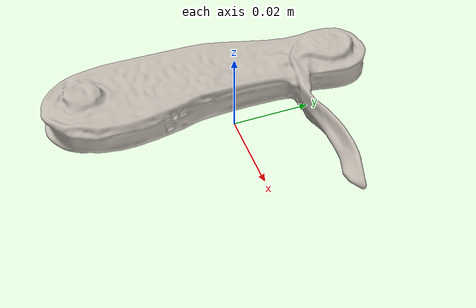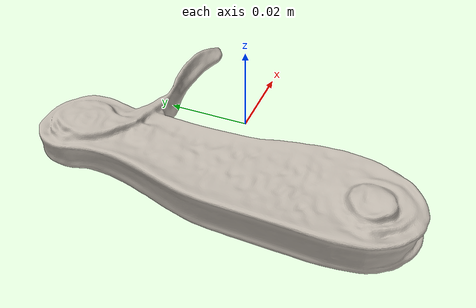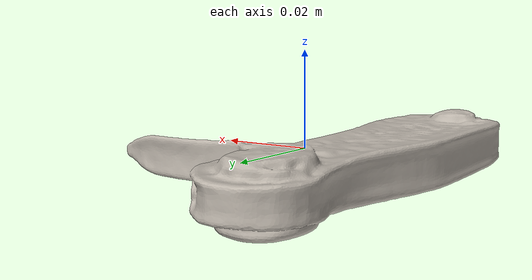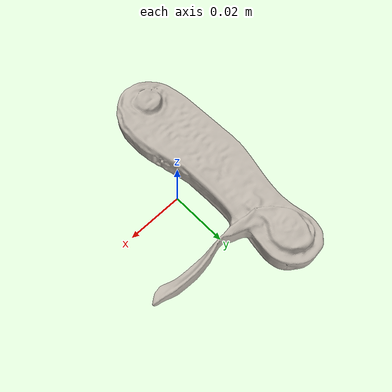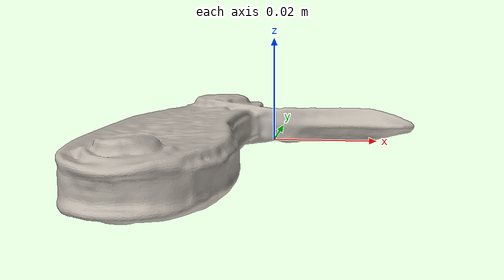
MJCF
<?xml version='1.0' encoding='utf-8'?>
<mujoco model="can_opener_5">
  <asset>
    <texture file="ceramic.png" name="tex-can_opener_5" type="2d" />
    <material name="can_opener_5" reflectance="0.5" texrepeat="1 1" texture="tex-can_opener_5" texuniform="false" />
    <mesh file="visual/model_normalized_0.obj" name="model_normalized_0_vis" scale="0.09 0.09 0.09" refquat="0.7071067811865475 0.0 0.7071067811865475 0.0" />
    <mesh file="collision/model_normalized_collision_13.obj" name="model_normalized_collision_13._coll" scale="0.09 0.09 0.09" refquat="0.7071067811865475 0.0 0.7071067811865475 0.0" />
    <mesh file="collision/model_normalized_collision_15.obj" name="model_normalized_collision_15._coll" scale="0.09 0.09 0.09" refquat="0.7071067811865475 0.0 0.7071067811865475 0.0" />
    <mesh file="collision/model_normalized_collision_10.obj" name="model_normalized_collision_10._coll" scale="0.09 0.09 0.09" refquat="0.7071067811865475 0.0 0.7071067811865475 0.0" />
    <mesh file="collision/model_normalized_collision_26.obj" name="model_normalized_collision_26._coll" scale="0.09 0.09 0.09" refquat="0.7071067811865475 0.0 0.7071067811865475 0.0" />
    <mesh file="collision/model_normalized_collision_25.obj" name="model_normalized_collision_25._coll" scale="0.09 0.09 0.09" refquat="0.7071067811865475 0.0 0.7071067811865475 0.0" />
    <mesh file="collision/model_normalized_collision_5.obj" name="model_normalized_collision_5._coll" scale="0.09 0.09 0.09" refquat="0.7071067811865475 0.0 0.7071067811865475 0.0" />
    <mesh file="collision/model_normalized_collision_31.obj" name="model_normalized_collision_31._coll" scale="0.09 0.09 0.09" refquat="0.7071067811865475 0.0 0.7071067811865475 0.0" />
    <mesh file="collision/model_normalized_collision_3.obj" name="model_normalized_collision_3._coll" scale="0.09 0.09 0.09" refquat="0.7071067811865475 0.0 0.7071067811865475 0.0" />
    <mesh file="collision/model_normalized_collision_14.obj" name="model_normalized_collision_14._coll" scale="0.09 0.09 0.09" refquat="0.7071067811865475 0.0 0.7071067811865475 0.0" />
    <mesh file="collision/model_normalized_collision_28.obj" name="model_normalized_collision_28._coll" scale="0.09 0.09 0.09" refquat="0.7071067811865475 0.0 0.7071067811865475 0.0" />
    <mesh file="collision/model_normalized_collision_11.obj" name="model_normalized_collision_11._coll" scale="0.09 0.09 0.09" refquat="0.7071067811865475 0.0 0.7071067811865475 0.0" />
    <mesh file="collision/model_normalized_collision_29.obj" name="model_normalized_collision_29._coll" scale="0.09 0.09 0.09" refquat="0.7071067811865475 0.0 0.7071067811865475 0.0" />
    <mesh file="collision/model_normalized_collision_24.obj" name="model_normalized_collision_24._coll" scale="0.09 0.09 0.09" refquat="0.7071067811865475 0.0 0.7071067811865475 0.0" />
    <mesh file="collision/model_normalized_collision_1.obj" name="model_normalized_collision_1._coll" scale="0.09 0.09 0.09" refquat="0.7071067811865475 0.0 0.7071067811865475 0.0" />
    <mesh file="collision/model_normalized_collision_0.obj" name="model_normalized_collision_0._coll" scale="0.09 0.09 0.09" refquat="0.7071067811865475 0.0 0.7071067811865475 0.0" />
    <mesh file="collision/model_normalized_collision_27.obj" name="model_normalized_collision_27._coll" scale="0.09 0.09 0.09" refquat="0.7071067811865475 0.0 0.7071067811865475 0.0" />
    <mesh file="collision/model_normalized_collision_9.obj" name="model_normalized_collision_9._coll" scale="0.09 0.09 0.09" refquat="0.7071067811865475 0.0 0.7071067811865475 0.0" />
    <mesh file="collision/model_normalized_collision_19.obj" name="model_normalized_collision_19._coll" scale="0.09 0.09 0.09" refquat="0.7071067811865475 0.0 0.7071067811865475 0.0" />
    <mesh file="collision/model_normalized_collision_21.obj" name="model_normalized_collision_21._coll" scale="0.09 0.09 0.09" refquat="0.7071067811865475 0.0 0.7071067811865475 0.0" />
    <mesh file="collision/model_normalized_collision_30.obj" name="model_normalized_collision_30._coll" scale="0.09 0.09 0.09" refquat="0.7071067811865475 0.0 0.7071067811865475 0.0" />
    <mesh file="collision/model_normalized_collision_20.obj" name="model_normalized_collision_20._coll" scale="0.09 0.09 0.09" refquat="0.7071067811865475 0.0 0.7071067811865475 0.0" />
    <mesh file="collision/model_normalized_collision_2.obj" name="model_normalized_collision_2._coll" scale="0.09 0.09 0.09" refquat="0.7071067811865475 0.0 0.7071067811865475 0.0" />
    <mesh file="collision/model_normalized_collision_7.obj" name="model_normalized_collision_7._coll" scale="0.09 0.09 0.09" refquat="0.7071067811865475 0.0 0.7071067811865475 0.0" />
    <mesh file="collision/model_normalized_collision_22.obj" name="model_normalized_collision_22._coll" scale="0.09 0.09 0.09" refquat="0.7071067811865475 0.0 0.7071067811865475 0.0" />
    <mesh file="collision/model_normalized_collision_16.obj" name="model_normalized_collision_16._coll" scale="0.09 0.09 0.09" refquat="0.7071067811865475 0.0 0.7071067811865475 0.0" />
    <mesh file="collision/model_normalized_collision_8.obj" name="model_normalized_collision_8._coll" scale="0.09 0.09 0.09" refquat="0.7071067811865475 0.0 0.7071067811865475 0.0" />
    <mesh file="collision/model_normalized_collision_6.obj" name="model_normalized_collision_6._coll" scale="0.09 0.09 0.09" refquat="0.7071067811865475 0.0 0.7071067811865475 0.0" />
    <mesh file="collision/model_normalized_collision_18.obj" name="model_normalized_collision_18._coll" scale="0.09 0.09 0.09" refquat="0.7071067811865475 0.0 0.7071067811865475 0.0" />
    <mesh file="collision/model_normalized_collision_17.obj" name="model_normalized_collision_17._coll" scale="0.09 0.09 0.09" refquat="0.7071067811865475 0.0 0.7071067811865475 0.0" />
    <mesh file="collision/model_normalized_collision_12.obj" name="model_normalized_collision_12._coll" scale="0.09 0.09 0.09" refquat="0.7071067811865475 0.0 0.7071067811865475 0.0" />
    <mesh file="collision/model_normalized_collision_4.obj" name="model_normalized_collision_4._coll" scale="0.09 0.09 0.09" refquat="0.7071067811865475 0.0 0.7071067811865475 0.0" />
    <mesh file="collision/model_normalized_collision_23.obj" name="model_normalized_collision_23._coll" scale="0.09 0.09 0.09" refquat="0.7071067811865475 0.0 0.7071067811865475 0.0" />
    <texture type="2d" name="44529d138ebb_can_opener__3d_asse_texture_kd" file="visual/44529d138ebb_can_opener__3d_asse_texture_kd.png" />
    <material name="Material_0" texture="44529d138ebb_can_opener__3d_asse_texture_kd" specular="0.5" shininess="0.5" />
  </asset>
  <default>
    <default class="region">
      <geom group="1" conaffinity="0" contype="0" rgba="0 1 0 0" />
    </default>
  </default>
  <worldbody>
    <body>
      <body name="object">
        <geom solimp="0.998 0.998 0.001" solref="0.001 1" density="100" friction="0.95 0.3 0.1" type="mesh" mesh="model_normalized_0_vis" conaffinity="0" contype="0" group="1" material="Material_0" />
        <geom solimp="0.998 0.998 0.001" solref="0.001 1" density="100" friction="0.95 0.3 0.1" type="mesh" mesh="model_normalized_collision_13._coll" group="0" rgba="0.8 0.8 0.8 0.0" />
        <geom solimp="0.998 0.998 0.001" solref="0.001 1" density="100" friction="0.95 0.3 0.1" type="mesh" mesh="model_normalized_collision_15._coll" group="0" rgba="0.8 0.8 0.8 0.0" />
        <geom solimp="0.998 0.998 0.001" solref="0.001 1" density="100" friction="0.95 0.3 0.1" type="mesh" mesh="model_normalized_collision_10._coll" group="0" rgba="0.8 0.8 0.8 0.0" />
        <geom solimp="0.998 0.998 0.001" solref="0.001 1" density="100" friction="0.95 0.3 0.1" type="mesh" mesh="model_normalized_collision_26._coll" group="0" rgba="0.8 0.8 0.8 0.0" />
        <geom solimp="0.998 0.998 0.001" solref="0.001 1" density="100" friction="0.95 0.3 0.1" type="mesh" mesh="model_normalized_collision_25._coll" group="0" rgba="0.8 0.8 0.8 0.0" />
        <geom solimp="0.998 0.998 0.001" solref="0.001 1" density="100" friction="0.95 0.3 0.1" type="mesh" mesh="model_normalized_collision_5._coll" group="0" rgba="0.8 0.8 0.8 0.0" />
        <geom solimp="0.998 0.998 0.001" solref="0.001 1" density="100" friction="0.95 0.3 0.1" type="mesh" mesh="model_normalized_collision_31._coll" group="0" rgba="0.8 0.8 0.8 0.0" />
        <geom solimp="0.998 0.998 0.001" solref="0.001 1" density="100" friction="0.95 0.3 0.1" type="mesh" mesh="model_normalized_collision_3._coll" group="0" rgba="0.8 0.8 0.8 0.0" />
        <geom solimp="0.998 0.998 0.001" solref="0.001 1" density="100" friction="0.95 0.3 0.1" type="mesh" mesh="model_normalized_collision_14._coll" group="0" rgba="0.8 0.8 0.8 0.0" />
        <geom solimp="0.998 0.998 0.001" solref="0.001 1" density="100" friction="0.95 0.3 0.1" type="mesh" mesh="model_normalized_collision_28._coll" group="0" rgba="0.8 0.8 0.8 0.0" />
        <geom solimp="0.998 0.998 0.001" solref="0.001 1" density="100" friction="0.95 0.3 0.1" type="mesh" mesh="model_normalized_collision_11._coll" group="0" rgba="0.8 0.8 0.8 0.0" />
        <geom solimp="0.998 0.998 0.001" solref="0.001 1" density="100" friction="0.95 0.3 0.1" type="mesh" mesh="model_normalized_collision_29._coll" group="0" rgba="0.8 0.8 0.8 0.0" />
        <geom solimp="0.998 0.998 0.001" solref="0.001 1" density="100" friction="0.95 0.3 0.1" type="mesh" mesh="model_normalized_collision_24._coll" group="0" rgba="0.8 0.8 0.8 0.0" />
        <geom solimp="0.998 0.998 0.001" solref="0.001 1" density="100" friction="0.95 0.3 0.1" type="mesh" mesh="model_normalized_collision_1._coll" group="0" rgba="0.8 0.8 0.8 0.0" />
        <geom solimp="0.998 0.998 0.001" solref="0.001 1" density="100" friction="0.95 0.3 0.1" type="mesh" mesh="model_normalized_collision_0._coll" group="0" rgba="0.8 0.8 0.8 0.0" />
        <geom solimp="0.998 0.998 0.001" solref="0.001 1" density="100" friction="0.95 0.3 0.1" type="mesh" mesh="model_normalized_collision_27._coll" group="0" rgba="0.8 0.8 0.8 0.0" />
        <geom solimp="0.998 0.998 0.001" solref="0.001 1" density="100" friction="0.95 0.3 0.1" type="mesh" mesh="model_normalized_collision_9._coll" group="0" rgba="0.8 0.8 0.8 0.0" />
        <geom solimp="0.998 0.998 0.001" solref="0.001 1" density="100" friction="0.95 0.3 0.1" type="mesh" mesh="model_normalized_collision_19._coll" group="0" rgba="0.8 0.8 0.8 0.0" />
        <geom solimp="0.998 0.998 0.001" solref="0.001 1" density="100" friction="0.95 0.3 0.1" type="mesh" mesh="model_normalized_collision_21._coll" group="0" rgba="0.8 0.8 0.8 0.0" />
        <geom solimp="0.998 0.998 0.001" solref="0.001 1" density="100" friction="0.95 0.3 0.1" type="mesh" mesh="model_normalized_collision_30._coll" group="0" rgba="0.8 0.8 0.8 0.0" />
        <geom solimp="0.998 0.998 0.001" solref="0.001 1" density="100" friction="0.95 0.3 0.1" type="mesh" mesh="model_normalized_collision_20._coll" group="0" rgba="0.8 0.8 0.8 0.0" />
        <geom solimp="0.998 0.998 0.001" solref="0.001 1" density="100" friction="0.95 0.3 0.1" type="mesh" mesh="model_normalized_collision_2._coll" group="0" rgba="0.8 0.8 0.8 0.0" />
        <geom solimp="0.998 0.998 0.001" solref="0.001 1" density="100" friction="0.95 0.3 0.1" type="mesh" mesh="model_normalized_collision_7._coll" group="0" rgba="0.8 0.8 0.8 0.0" />
        <geom solimp="0.998 0.998 0.001" solref="0.001 1" density="100" friction="0.95 0.3 0.1" type="mesh" mesh="model_normalized_collision_22._coll" group="0" rgba="0.8 0.8 0.8 0.0" />
        <geom solimp="0.998 0.998 0.001" solref="0.001 1" density="100" friction="0.95 0.3 0.1" type="mesh" mesh="model_normalized_collision_16._coll" group="0" rgba="0.8 0.8 0.8 0.0" />
        <geom solimp="0.998 0.998 0.001" solref="0.001 1" density="100" friction="0.95 0.3 0.1" type="mesh" mesh="model_normalized_collision_8._coll" group="0" rgba="0.8 0.8 0.8 0.0" />
        <geom solimp="0.998 0.998 0.001" solref="0.001 1" density="100" friction="0.95 0.3 0.1" type="mesh" mesh="model_normalized_collision_6._coll" group="0" rgba="0.8 0.8 0.8 0.0" />
        <geom solimp="0.998 0.998 0.001" solref="0.001 1" density="100" friction="0.95 0.3 0.1" type="mesh" mesh="model_normalized_collision_18._coll" group="0" rgba="0.8 0.8 0.8 0.0" />
        <geom solimp="0.998 0.998 0.001" solref="0.001 1" density="100" friction="0.95 0.3 0.1" type="mesh" mesh="model_normalized_collision_17._coll" group="0" rgba="0.8 0.8 0.8 0.0" />
        <geom solimp="0.998 0.998 0.001" solref="0.001 1" density="100" friction="0.95 0.3 0.1" type="mesh" mesh="model_normalized_collision_12._coll" group="0" rgba="0.8 0.8 0.8 0.0" />
        <geom solimp="0.998 0.998 0.001" solref="0.001 1" density="100" friction="0.95 0.3 0.1" type="mesh" mesh="model_normalized_collision_4._coll" group="0" rgba="0.8 0.8 0.8 0.0" />
        <geom solimp="0.998 0.998 0.001" solref="0.001 1" density="100" friction="0.95 0.3 0.1" type="mesh" mesh="model_normalized_collision_23._coll" group="0" rgba="0.8 0.8 0.8 0.0" />
        <geom class="region" name="reg_bbox" type="box" pos="-0.00022520789999999817 1.3500000017874214e-09 -1.909665000000057e-05" size="0.030456609299999996 0.045681818400000004 0.006818181749999999" />
      </body>
    <site rgba="0 0 0 0" size="0.005" pos="0 0 -0.0068372784" name="bottom_site" /><site rgba="0 0 0 0" size="0.005" pos="0 0 0.0067990851" name="top_site" /><site rgba="0 0 0 0" size="0.005" pos="0.04568182 0.04568182 0" name="horizontal_radius_site" /></body>
  </worldbody>
</mujoco>
